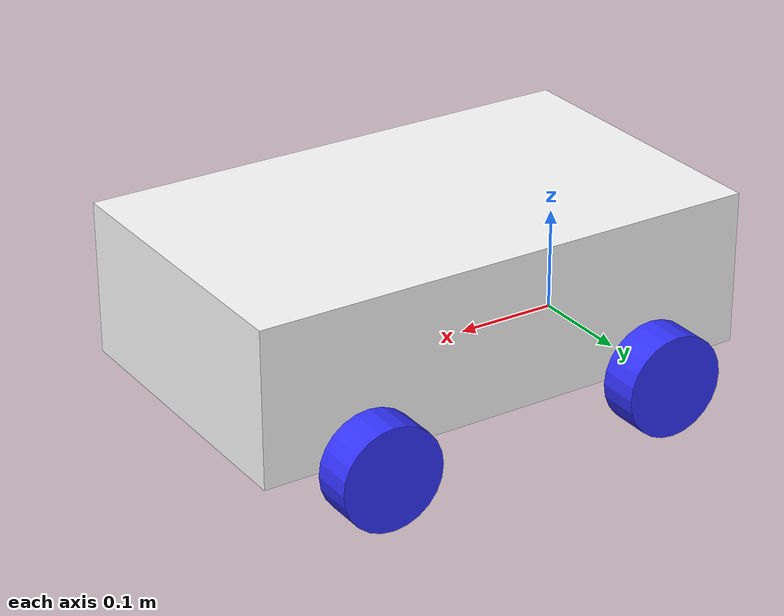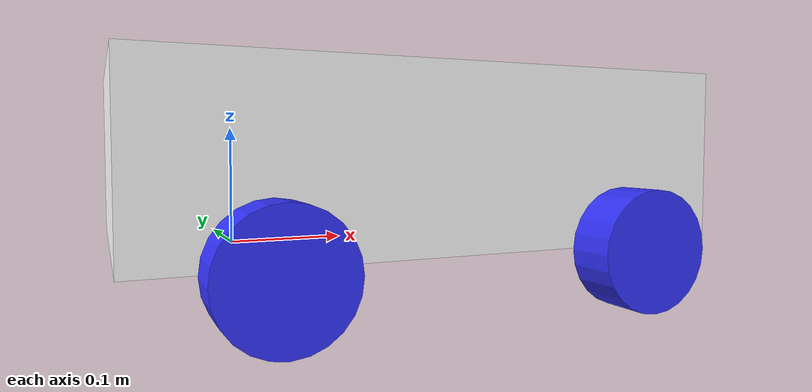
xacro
<?xml version="1.0"?>
<robot xmlns:xacro="http://www.ros.org/wiki/xacro" >

    <xacro:include filename="inertial_macros.xacro"/>

    <material name="white">
        <color rgba="1 1 1 1" />
    </material>

    <material name="orange">
        <color rgba="1 0.3 0.1 1"/>
    </material>

    <material name="blue">
        <color rgba="0.2 0.2 1 1"/>
    </material>

    <material name="black">
        <color rgba="0 0 0 1"/>
    </material>

    <material name="red">
        <color rgba="1 0 0 1"/>
    </material>

    <!-- BASE LINK -->

    <link name="base_link">

    </link>

    <!-- CHASSIS LINK -->

    <joint name="chassis_joint" type="fixed">
        <parent link="base_link"/>
        <child link="chassis"/>
        <origin xyz="-0.1 0 0"/>
    </joint>

    <link name="chassis">
        <visual>
            <origin xyz="0.25 0 0.075"/>
            <geometry>
                <box size="0.5 0.3 0.15"/>
            </geometry>
            <material name="white"/>
        </visual>
        <collision>
            <origin xyz="0.25 0 0.075"/>
            <geometry>
                <box size="0.5 0.3 0.15"/>
            </geometry>
        </collision>
        <xacro:inertial_box mass="0.5" x="0.3" y="0.3" z="0.15">
            <origin xyz="0.25 0 0.075" rpy="0 0 0"/>
        </xacro:inertial_box>
    </link>

    <gazebo reference="chassis">
        <material>Gazebo/White</material>
    </gazebo>

    <!-- FRONT LEFT WHEEL LINK -->

    <joint name="front_left_wheel_steer_joint" type="revolute">
        <parent link="base_link"/>
        <child link="front_left_wheel_steer"/>
        <origin xyz="0.3 0.175 0" rpy="0 0 0" />
        <axis xyz="0 0 1"/>
        <limit lower="-3.14" upper="3.14" effort="100" velocity="1"/>
    </joint>

    <joint name="front_left_wheel_joint" type="continuous">
        <parent link="front_left_wheel_steer"/>
        <child link="front_left_wheel"/>
        <origin xyz="0 0 0" rpy="-${pi/2} 0 0" />
        <axis xyz="0 0 1"/>
    </joint>

    <link name="front_left_wheel_steer">
        <visual>
            <geometry>
                <cylinder length="0.01" radius="0.01"/>
            </geometry>
            <material name="black">
                <color rgba="0 0 0 1"/>
            </material>
        </visual>
        <xacro:inertial_cylinder mass="0.1" length="0.01" radius="0.01">
            <origin xyz="0 0 0" rpy="0 0 0"/>
        </xacro:inertial_cylinder>
    </link>

    <link name="front_left_wheel">
        <visual>
            <geometry>
                <cylinder radius="0.05" length="0.04"/>
            </geometry>
            <material name="blue"/>
        </visual>
        <collision>
            <geometry>
                <cylinder radius="0.05" length="0.04"/>
            </geometry>
        </collision>
        <xacro:inertial_cylinder mass="0.1" length="0.04" radius="0.05">
            <origin xyz="0 0 0" rpy="0 0 0"/>
        </xacro:inertial_cylinder>
    </link>

    <gazebo reference="front_left_wheel">
        <material>Gazebo/Blue</material>
    </gazebo>

    <!-- FRONT RIGHT WHEEL LINK -->

    <joint name="front_right_wheel_steer_joint" type="revolute">
        <parent link="base_link"/>
        <child link="front_right_wheel_steer"/>
        <origin xyz="0.3 -0.175 0" rpy="0 0 0" />
        <axis xyz="0 0 1"/>
        <limit lower="-3.14" upper="3.14" effort="100" velocity="1"/>
    </joint>

    <joint name="front_right_wheel_joint" type="continuous">
        <parent link="front_right_wheel_steer"/>
        <child link="front_right_wheel"/>
        <origin xyz="0 0 0" rpy="${pi/2} 0 0" />
        <axis xyz="0 0 -1"/>
    </joint>

    <link name="front_right_wheel_steer">
        <visual>
            <geometry>
                <cylinder length="0.01" radius="0.01"/>
            </geometry>
            <material name="black">
                <color rgba="0 0 0 1"/>
            </material>
        </visual>
        <xacro:inertial_cylinder mass="0.1" length="0.01" radius="0.01">
            <origin xyz="0 0 0" rpy="0 0 0"/>
        </xacro:inertial_cylinder>
    </link>

    <link name="front_right_wheel">
        <visual>
            <geometry>
                <cylinder radius="0.05" length="0.04"/>
            </geometry>
            <material name="blue"/>
        </visual>
        <collision>
            <geometry>
                <cylinder radius="0.05" length="0.04"/>
            </geometry>
        </collision>
        <xacro:inertial_cylinder mass="0.1" length="0.04" radius="0.05">
            <origin xyz="0 0 0" rpy="0 0 0"/>
        </xacro:inertial_cylinder>
    </link>

    <gazebo reference="front_right_wheel">
        <material>Gazebo/Blue</material>
    </gazebo>

    <!-- REAR LEFT WHEEL LINK -->

    <joint name="rear_left_wheel_joint" type="continuous">
        <parent link="base_link"/>
        <child link="rear_left_wheel"/>
        <origin xyz="0 0.175 0" rpy="-${pi/2} 0 0" />
        <axis xyz="0 0 1"/>
    </joint>

    <link name="rear_left_wheel">
        <visual>
            <geometry>
                <cylinder radius="0.05" length="0.04"/>
            </geometry>
            <material name="blue"/>
        </visual>
        <collision>
            <geometry>
                <cylinder radius="0.05" length="0.04"/>
            </geometry>
        </collision>
        <xacro:inertial_cylinder mass="0.1" length="0.04" radius="0.05">
            <origin xyz="0 0 0" rpy="0 0 0"/>
        </xacro:inertial_cylinder>
    </link>

    <gazebo reference="rear_left_wheel">
        <material>Gazebo/Blue</material>
    </gazebo>

    <!-- REAR RIGHT WHEEL LINK -->

    <joint name="rear_right_wheel_joint" type="continuous">
        <parent link="base_link"/>
        <child link="rear_right_wheel"/>
        <origin xyz="0 -0.175 0" rpy="${pi/2} 0 0" />
        <axis xyz="0 0 -1"/>
    </joint>

    <link name="rear_right_wheel">
        <visual>
            <geometry>
                <cylinder radius="0.05" length="0.04"/>
            </geometry>
            <material name="blue"/>
        </visual>
        <collision>
            <geometry>
                <cylinder radius="0.05" length="0.04"/>
            </geometry>
        </collision>
        <xacro:inertial_cylinder mass="0.1" length="0.04" radius="0.05">
            <origin xyz="0 0 0" rpy="0 0 0"/>
        </xacro:inertial_cylinder>
    </link>

    <gazebo reference="rear_right_wheel">
        <material>Gazebo/Blue</material>
    </gazebo>

</robot>
